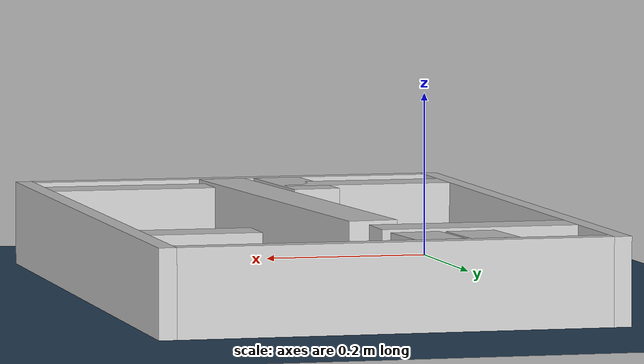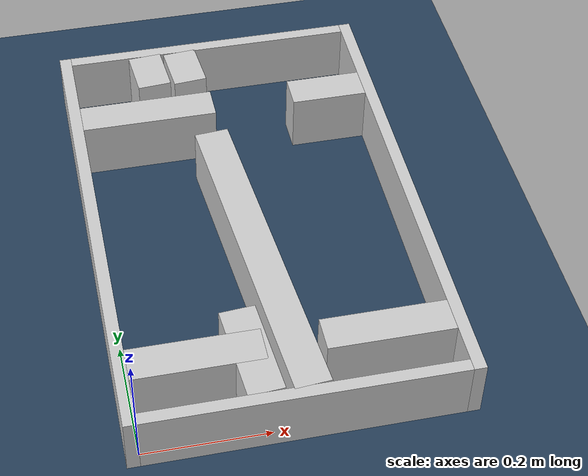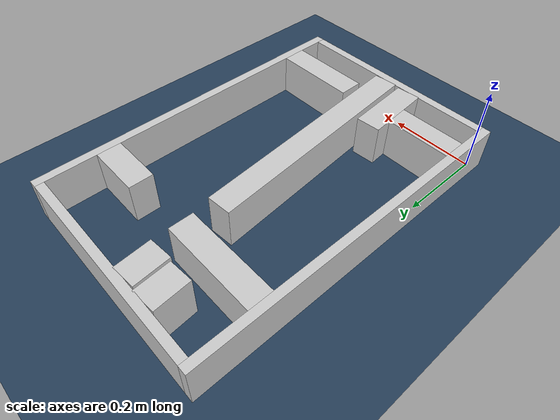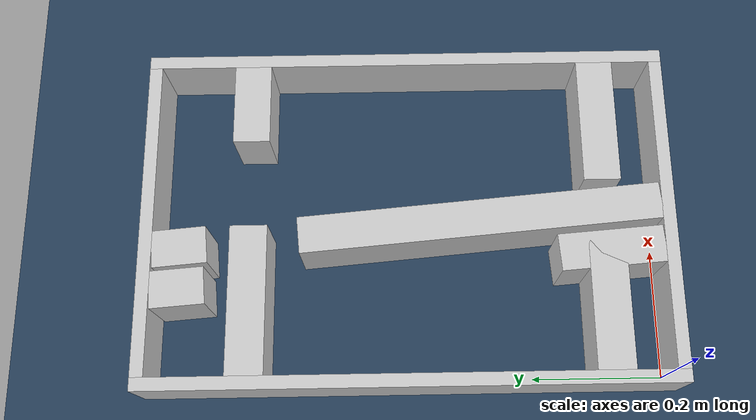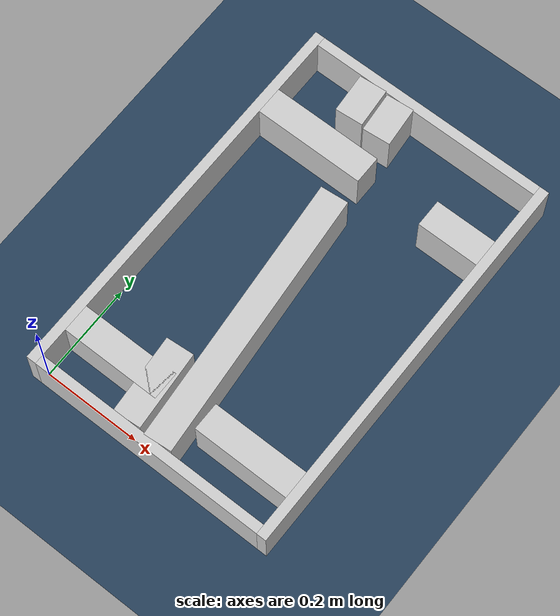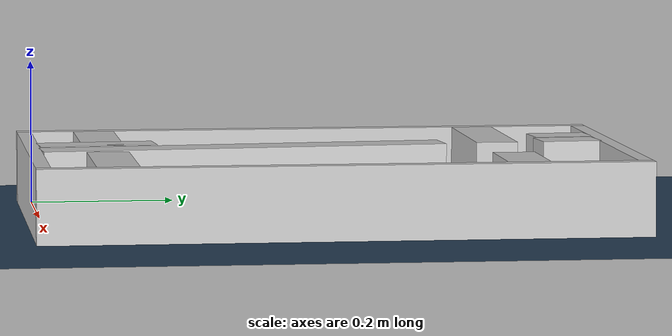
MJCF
<?xml version="1.0" ?>
<mujoco model="generated_real_template">
  <compiler angle="degree"/>
  <option timestep="0.002" integrator="implicitfast" iterations="100" cone="elliptic"/>
  <default>
    <geom density="1"/>
  </default>
  <asset>
    <texture builtin="gradient" height="3072" rgb1="0.3 0.5 0.7" rgb2="0 0 0" type="skybox" width="512"/>
    <texture builtin="checker" height="300" mark="edge" markrgb="0.8 0.8 0.8" name="groundplane" rgb1="0.2 0.3 0.4" rgb2="0.1 0.2 0.3" type="2d" width="300"/>
    <material name="groundplane" reflectance="0.2" texrepeat="5 5" texture="groundplane" texuniform="true"/>
  </asset>
  <worldbody>
    <light dir="0 0 -1" directional="true" pos="0 0 1.5"/>
    <geom name="floor" type="plane" condim="4" friction="0.5 0.005 0.001" material="groundplane" size="0 0 0.05"/>
    <body name="walls">
      <geom name="wall_boundary_left" type="box" condim="4" friction="1.0 0.005 0.0001" rgba="0.8 0.8 0.8 1" pos="-0.010000 0.387500 0.050000" euler="0 0 0.000000" size="0.010000 0.407500 0.050000"/>
      <geom name="wall_boundary_right" type="box" condim="4" friction="1.0 0.005 0.0001" rgba="0.8 0.8 0.8 1" pos="0.500000 0.387500 0.050000" euler="0 0 0.000000" size="0.010000 0.407500 0.050000"/>
      <geom name="wall_boundary_bottom" type="box" condim="4" friction="1.0 0.005 0.0001" rgba="0.8 0.8 0.8 1" pos="0.245000 -0.010000 0.050000" euler="0 0 0.000000" size="0.245000 0.010000 0.050000"/>
      <geom name="wall_boundary_top" type="box" condim="4" friction="1.0 0.005 0.0001" rgba="0.8 0.8 0.8 1" pos="0.245000 0.785000 0.050000" euler="0 0 0.000000" size="0.245000 0.010000 0.050000"/>
      <geom name="wall_inner_1_1" type="box" condim="4" friction="1.0 0.005 0.0001" rgba="0.8 0.8 0.8 1" pos="0.194702 0.733708 0.050000" euler="0 0 -85.093866" size="0.041444 0.028500 0.050000"/>
      <geom name="wall_inner_1_2" type="box" condim="4" friction="1.0 0.005 0.0001" rgba="0.8 0.8 0.8 1" pos="0.233866 0.277459 0.050000" euler="0 0 -85.093866" size="0.278479 0.028500 0.050000"/>
      <geom name="wall_inner_2_1" type="box" condim="4" friction="1.0 0.005 0.0001" rgba="0.8 0.8 0.8 1" pos="0.101908 0.087880 0.050000" euler="0 0 0.000000" size="0.101908 0.028500 0.050000"/>
      <geom name="wall_inner_2_2" type="box" condim="4" friction="1.0 0.005 0.0001" rgba="0.8 0.8 0.8 1" pos="0.391033 0.087880 0.050000" euler="0 0 0.000000" size="0.098967 0.028500 0.050000"/>
      <geom name="wall_inner_3_1" type="box" condim="4" friction="1.0 0.005 0.0001" rgba="0.8 0.8 0.8 1" pos="0.132142 0.734095 0.050000" euler="0 0 -85.551228" size="0.041029 0.028500 0.050000"/>
      <geom name="wall_inner_3_2" type="box" condim="4" friction="1.0 0.005 0.0001" rgba="0.8 0.8 0.8 1" pos="0.183014 0.080223 0.050000" euler="0 0 -85.551228" size="0.080466 0.028500 0.050000"/>
      <geom name="wall_inner_4_1" type="box" condim="4" friction="1.0 0.005 0.0001" rgba="0.8 0.8 0.8 1" pos="0.113471 0.629848 0.050000" euler="0 0 0.000000" size="0.113471 0.028500 0.050000"/>
      <geom name="wall_inner_4_2" type="box" condim="4" friction="1.0 0.005 0.0001" rgba="0.8 0.8 0.8 1" pos="0.426494 0.629848 0.050000" euler="0 0 0.000000" size="0.063506 0.028500 0.050000"/>
    </body>
  </worldbody>
</mujoco>
